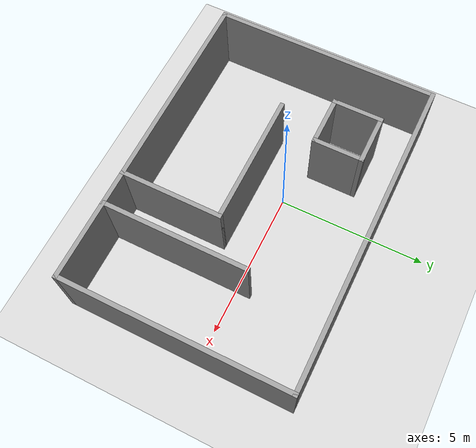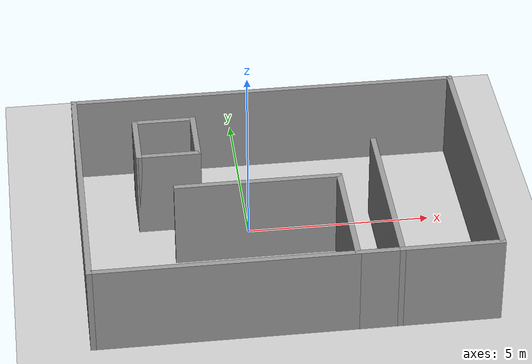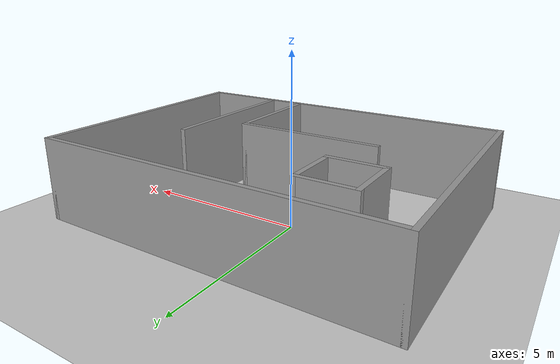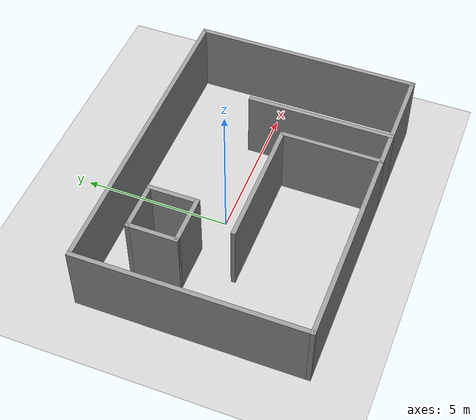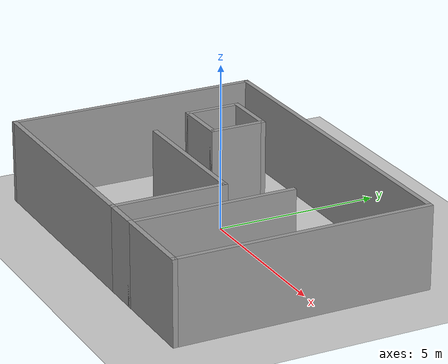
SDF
<sdf version="1.7">
 <world name="default">
  <plugin filename="gz-sim-physics-system" name="gz::sim::systems::Physics"/>
  <plugin filename="gz-sim-user-commands-system" name="gz::sim::systems::UserCommands"/>
  <plugin filename="gz-sim-scene-broadcaster-system" name="gz::sim::systems::SceneBroadcaster"/>
  <plugin filename="gz-sim-sensors-system" name="gz::sim::systems::Sensors">
   <render_engine>ogre2</render_engine>
  </plugin>
  <plugin filename="gz-sim-imu-system" name="gz::sim::systems::Imu"/>
  <light name="sun" type="directional">
   <pose>0 0 10 0 -0 0</pose>
   <diffuse>0.8 0.8 0.8 1</diffuse>
   <specular>0.2 0.2 0.2 1</specular>
   <attenuation>
    <range>1000</range>
    <constant>0.9</constant>
    <linear>0.01</linear>
    <quadratic>0.001</quadratic>
   </attenuation>
   <direction>-0.5 0.1 -0.9</direction>
   <spot><inner_angle>0</inner_angle><outer_angle>0</outer_angle><falloff>0</falloff></spot>
  </light>
  <model name="ground_plane">
   <static>1</static>
   <link name="link">
    <collision name="collision">
     <geometry><plane><normal>0 0 1</normal><size>100 100</size></plane></geometry>
     <surface><friction><ode><mu>100</mu><mu2>50</mu2></ode></friction></surface>
    </collision>
    <visual name="visual">
     <cast_shadows>0</cast_shadows>
     <geometry><plane><normal>0 0 1</normal><size>100 100</size></plane></geometry>
     <material>
      <script><uri>file://media/materials/scripts/gazebo.material</uri><name>Gazebo/Grey</name></script>
     </material>
    </visual>
   </link>
  </model>
  <gravity>0 0 -9.8</gravity>
  <magnetic_field>6e-06 2.3e-05 -4.2e-05</magnetic_field>
  <atmosphere type="adiabatic"/>
  <physics type="ode">
   <max_step_size>0.001</max_step_size>
   <real_time_factor>1</real_time_factor>
   <real_time_update_rate>1000</real_time_update_rate>
  </physics>
  <scene><ambient>0.4 0.4 0.4 1</ambient><background>0.7 0.7 0.7 1</background><shadows>1</shadows></scene>
  <audio><device>default</device></audio>
  <spherical_coordinates>
   <surface_model>EARTH_WGS84</surface_model>
   <latitude_deg>0</latitude_deg>
   <longitude_deg>0</longitude_deg>
   <elevation>0</elevation>
   <heading_deg>0</heading_deg>
  </spherical_coordinates>
  <model name="robot.world">
   <pose>0.78 -0.62 0 0 -0 0</pose>
   <link name="Wall_0">
    <collision name="Wall_0_Collision">
     <geometry><box><size>4.5 0.15 2.5</size></box></geometry>
     <pose>0 0 1.25 0 -0 0</pose>
    </collision>
    <visual name="Wall_0_Visual">
     <pose>0 0 1.25 0 -0 0</pose>
     <geometry><box><size>4.5 0.15 2.5</size></box></geometry>
     <material>
      <script><uri>file://media/materials/scripts/gazebo.material</uri><name>Gazebo/Grey</name></script>
      <ambient>1 1 1 1</ambient>
     </material>
     <meta><layer>0</layer></meta>
    </visual>
    <pose>-0.625 -0.45 0 0 -0 0</pose>
   </link>
   <link name="Wall_1">
    <collision name="Wall_1_Collision">
     <geometry><box><size>3.5 0.15 2.5</size></box></geometry>
     <pose>0 0 1.25 0 -0 0</pose>
    </collision>
    <visual name="Wall_1_Visual">
     <pose>0 0 1.25 0 -0 0</pose>
     <geometry><box><size>3.5 0.15 2.5</size></box></geometry>
     <material>
      <script><uri>file://media/materials/scripts/gazebo.material</uri><name>Gazebo/Grey</name></script>
      <ambient>1 1 1 1</ambient>
     </material>
     <meta><layer>0</layer></meta>
    </visual>
    <pose>1.55 -2.125 0 0 -0 -1.5708</pose>
   </link>
   <link name="Wall_10">
    <collision name="Wall_10_Collision">
     <geometry><box><size>5 0.15 2.5</size></box></geometry>
     <pose>0 0 1.25 0 -0 0</pose>
    </collision>
    <visual name="Wall_10_Visual">
     <pose>0 0 1.25 0 -0 0</pose>
     <geometry><box><size>5 0.15 2.5</size></box></geometry>
     <material>
      <script><uri>file://media/materials/scripts/gazebo.material</uri><name>Gazebo/Grey</name></script>
      <ambient>1 1 1 1</ambient>
     </material>
     <meta><layer>0</layer></meta>
    </visual>
    <pose>2.7 -1.375 0 0 -0 1.5708</pose>
   </link>
   <link name="Wall_12">
    <collision name="Wall_12_Collision">
     <geometry><box><size>1.3 0.15 2.5</size></box></geometry>
     <pose>0 0 1.25 0 -0 0</pose>
    </collision>
    <visual name="Wall_12_Visual">
     <pose>0 0 1.25 0 -0 0</pose>
     <geometry><box><size>1.3 0.15 2.5</size></box></geometry>
     <material>
      <script><uri>file://media/materials/scripts/gazebo.material</uri><name>Gazebo/Grey</name></script>
      <ambient>1 1 1 1</ambient>
     </material>
     <meta><layer>0</layer></meta>
    </visual>
    <pose>2.125 -3.8 0 0 -0 0</pose>
   </link>
   <link name="Wall_14">
    <collision name="Wall_14_Collision">
     <geometry><box><size>1.75 0.15 2.5</size></box></geometry>
     <pose>0 0 1.25 0 -0 0</pose>
    </collision>
    <visual name="Wall_14_Visual">
     <pose>0 0 1.25 0 -0 0</pose>
     <geometry><box><size>1.75 0.15 2.5</size></box></geometry>
     <material>
      <script><uri>file://media/materials/scripts/gazebo.material</uri><name>Gazebo/Grey</name></script>
      <ambient>1 1 1 1</ambient>
     </material>
     <meta><layer>0</layer></meta>
    </visual>
    <pose>-3.68867 1.83925 0 0 -0 -1.5708</pose>
   </link>
   <link name="Wall_15">
    <collision name="Wall_15_Collision">
     <geometry><box><size>1.75 0.15 2.5</size></box></geometry>
     <pose>0 0 1.25 0 -0 0</pose>
    </collision>
    <visual name="Wall_15_Visual">
     <pose>0 0 1.25 0 -0 0</pose>
     <geometry><box><size>1.75 0.15 2.5</size></box></geometry>
     <material>
      <script><uri>file://media/materials/scripts/gazebo.material</uri><name>Gazebo/Grey</name></script>
      <ambient>1 1 1 1</ambient>
     </material>
     <meta><layer>0</layer></meta>
    </visual>
    <pose>-2.88867 1.03925 0 0 -0 0</pose>
   </link>
   <link name="Wall_16">
    <collision name="Wall_16_Collision">
     <geometry><box><size>1.75 0.15 2.5</size></box></geometry>
     <pose>0 0 1.25 0 -0 0</pose>
    </collision>
    <visual name="Wall_16_Visual">
     <pose>0 0 1.25 0 -0 0</pose>
     <geometry><box><size>1.75 0.15 2.5</size></box></geometry>
     <material>
      <script><uri>file://media/materials/scripts/gazebo.material</uri><name>Gazebo/Grey</name></script>
      <ambient>1 1 1 1</ambient>
     </material>
     <meta><layer>0</layer></meta>
    </visual>
    <pose>-2.08867 1.83925 0 0 -0 1.5708</pose>
   </link>
   <link name="Wall_17">
    <collision name="Wall_17_Collision">
     <geometry><box><size>1.75 0.15 2.5</size></box></geometry>
     <pose>0 0 1.25 0 -0 0</pose>
    </collision>
    <visual name="Wall_17_Visual">
     <pose>0 0 1.25 0 -0 0</pose>
     <geometry><box><size>1.75 0.15 2.5</size></box></geometry>
     <material>
      <script><uri>file://media/materials/scripts/gazebo.material</uri><name>Gazebo/Grey</name></script>
      <ambient>1 1 1 1</ambient>
     </material>
     <meta><layer>0</layer></meta>
    </visual>
    <pose>-2.88867 2.63925 0 0 -0 3.14159</pose>
   </link>
   <link name="Wall_2">
    <collision name="Wall_2_Collision">
     <geometry><box><size>7 0.15 2.5</size></box></geometry>
     <pose>0 0 1.25 0 -0 0</pose>
    </collision>
    <visual name="Wall_2_Visual">
     <pose>0 0 1.25 0 -0 0</pose>
     <geometry><box><size>7 0.15 2.5</size></box></geometry>
     <material>
      <script><uri>file://media/materials/scripts/gazebo.material</uri><name>Gazebo/Grey</name></script>
      <ambient>1 1 1 1</ambient>
     </material>
     <meta><layer>0</layer></meta>
    </visual>
    <pose>-1.875 -3.8 0 0 -0 3.14159</pose>
   </link>
   <link name="Wall_6">
    <collision name="Wall_6_Collision">
     <geometry><box><size>7.75 0.15 2.5</size></box></geometry>
     <pose>0 0 1.25 0 -0 0</pose>
    </collision>
    <visual name="Wall_6_Visual">
     <pose>0 0 1.25 0 -0 0</pose>
     <geometry><box><size>7.75 0.15 2.5</size></box></geometry>
     <material>
      <script><uri>file://media/materials/scripts/gazebo.material</uri><name>Gazebo/Grey</name></script>
      <ambient>1 1 1 1</ambient>
     </material>
     <meta><layer>0</layer></meta>
    </visual>
    <pose>-5.3 -0 0 0 -0 1.5708</pose>
   </link>
   <link name="Wall_7">
    <collision name="Wall_7_Collision">
     <geometry><box><size>10.75 0.15 2.5</size></box></geometry>
     <pose>0 0 1.25 0 -0 0</pose>
    </collision>
    <visual name="Wall_7_Visual">
     <pose>0 0 1.25 0 -0 0</pose>
     <geometry><box><size>10.75 0.15 2.5</size></box></geometry>
     <material>
      <script><uri>file://media/materials/scripts/gazebo.material</uri><name>Gazebo/Grey</name></script>
      <ambient>1 1 1 1</ambient>
     </material>
     <meta><layer>0</layer></meta>
    </visual>
    <pose>0 3.8 0 0 -0 0</pose>
   </link>
   <link name="Wall_8">
    <collision name="Wall_8_Collision">
     <geometry><box><size>7.75 0.15 2.5</size></box></geometry>
     <pose>0 0 1.25 0 -0 0</pose>
    </collision>
    <visual name="Wall_8_Visual">
     <pose>0 0 1.25 0 -0 0</pose>
     <geometry><box><size>7.75 0.15 2.5</size></box></geometry>
     <material>
      <script><uri>file://media/materials/scripts/gazebo.material</uri><name>Gazebo/Grey</name></script>
      <ambient>1 1 1 1</ambient>
     </material>
     <meta><layer>0</layer></meta>
    </visual>
    <pose>5.3 -0 0 0 -0 -1.5708</pose>
   </link>
   <link name="Wall_9">
    <collision name="Wall_9_Collision">
     <geometry><box><size>2.75 0.15 2.5</size></box></geometry>
     <pose>0 0 1.25 0 -0 0</pose>
    </collision>
    <visual name="Wall_9_Visual">
     <pose>0 0 1.25 0 -0 0</pose>
     <geometry><box><size>2.75 0.15 2.5</size></box></geometry>
     <material>
      <script><uri>file://media/materials/scripts/gazebo.material</uri><name>Gazebo/Grey</name></script>
      <ambient>1 1 1 1</ambient>
     </material>
     <meta><layer>0</layer></meta>
    </visual>
    <pose>4 -3.8 0 0 -0 3.14159</pose>
   </link>
   <static>1</static>
  </model>
 </world>
</sdf>
